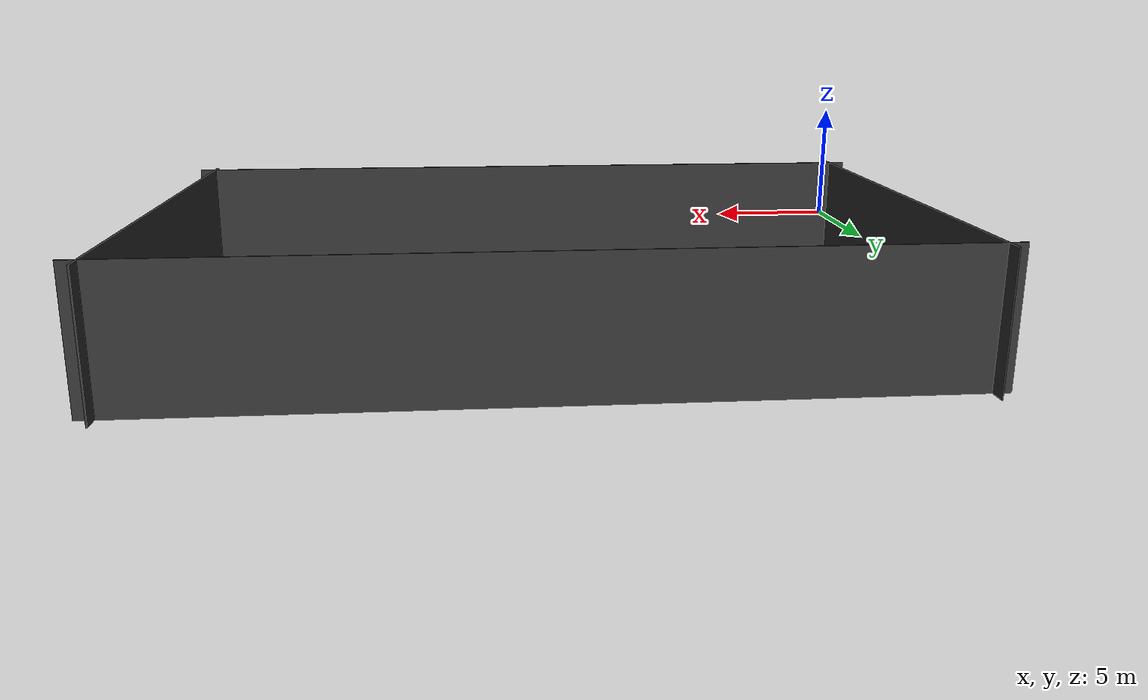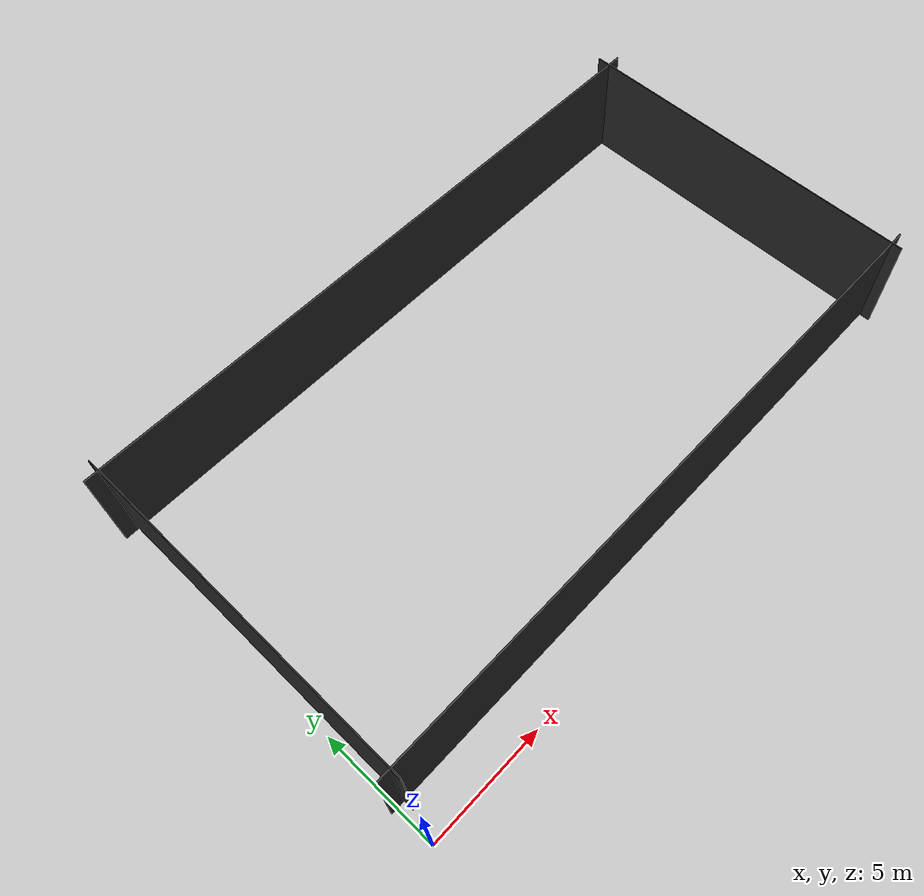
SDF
<?xml version='1.0'?>
<sdf version='1.6'>
  <model name='rmuc_2026'>
    <static>true</static>
    <link name='body'>
      <pose frame=''>14.5 8 2.0 0 0 0</pose>
      <self_collide>0</self_collide>
      <kinematic>0</kinematic>
      <gravity>1</gravity>
      <visual name='visual'>
        <geometry>
          <mesh>
            <uri>./meshes/rmuc_2026.stl</uri>
            <scale>0.1 0.1 0.1</scale>
          </mesh>
        </geometry>
        <material>
          <ambient>0.3 0.3 0.3 1</ambient>
          <diffuse>0.7 0.7 0.7 1</diffuse>
          <specular>0.01 0.01 0.01 1</specular>
        </material>
      </visual>
      <collision name='collision'>
        <geometry>
          <mesh>
            <uri>./meshes/rmuc_2026.stl</uri>
            <scale>0.1 0.1 0.1</scale>
          </mesh>
        </geometry>
      </collision>

      <collision name="wall_left_col">
        <pose>-14 1.68 -1.64134 0 0 0</pose>
        <geometry>
          <box>
            <size>0.05 16.10 5</size>
          </box>
        </geometry>
      </collision>
      <visual name="wall_left_vis">
        <pose>-14 1.68 -1.64134 0 0 0</pose>
        <geometry>
          <box>
            <size>0.05 16.10 5</size>
          </box>
        </geometry>
        <material>
          <ambient>0.2 0.2 0.2 1</ambient>
          <diffuse>0.2 0.2 0.2 1</diffuse>
          <specular>0.01 0.01 0.01 1</specular>
        </material>
      </visual>

      <collision name="wall_right_col">
        <pose>14 1.68 -1.64134 0 0 0</pose>
        <geometry>
          <box>
            <size>0.05 16.10 5</size>
          </box>
        </geometry>
      </collision>
      <visual name="wall_right_vis">
        <pose>14 1.68 -1.64314 0 0 0</pose>
        <geometry>
          <box>
            <size>0.05 16.10 5</size>
          </box>
        </geometry>
        <material>
          <ambient>0.2 0.2 0.2 1</ambient>
          <diffuse>0.2 0.2 0.2 1</diffuse>
          <specular>0.01 0.01 0.01 1</specular>
        </material>
      </visual>

      <collision name="wall_bottom_col">
        <pose>0 -5.9 -1.64314 0 0 0</pose>
        <geometry>
          <box>
            <size>29.25 0.05 5</size>
          </box>
        </geometry>
      </collision>
      <visual name="wall_bottom_vis">
        <pose>0 -5.9 -1.64314 0 0 0</pose>
        <geometry>
          <box>
            <size>29.25 0.05 5</size>
          </box>
        </geometry>
        <material>
          <ambient>0.2 0.2 0.2 1</ambient>
          <diffuse>0.2 0.2 0.2 1</diffuse>
          <specular>0.01 0.01 0.01 1</specular>
        </material>
      </visual>

      <collision name="wall_top_col">
        <pose>0 9.15 -1.64314 0 0 0</pose>
        <geometry>
          <box>
            <size>29.25 0.05 5</size>
          </box>
        </geometry>
      </collision>
      <visual name="wall_top_vis">
        <pose>0 9.15 -1.64314 0 0 0</pose>
        <geometry>
          <box>
            <size>29.25 0.05 5</size>
          </box>
        </geometry>
        <material>
          <ambient>0.2 0.2 0.2 1</ambient>
          <diffuse>0.2 0.2 0.2 1</diffuse>
          <specular>0.01 0.01 0.01 1</specular>
        </material>
      </visual>

    </link>
  </model>
</sdf>
